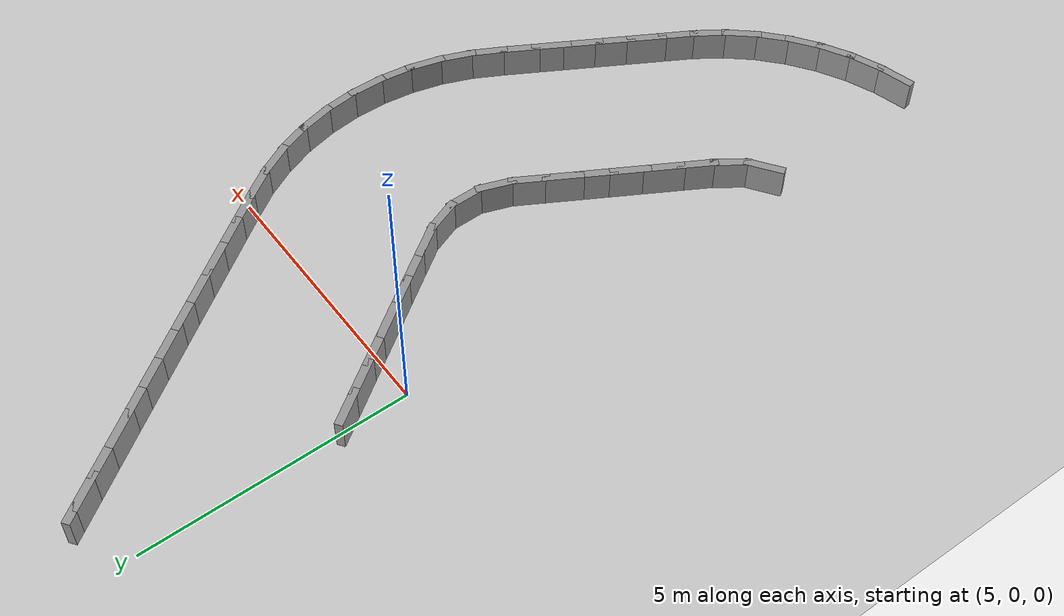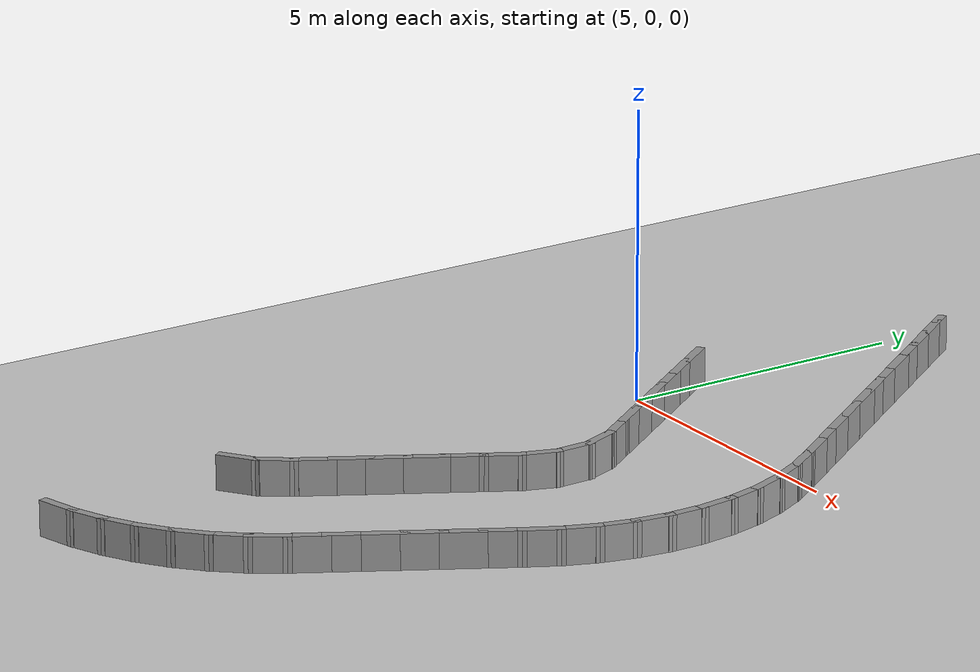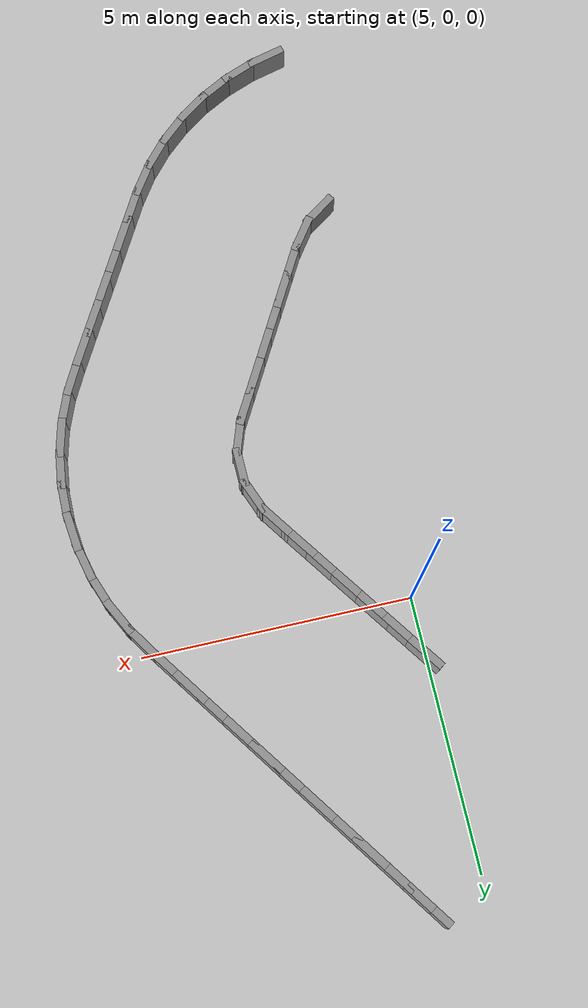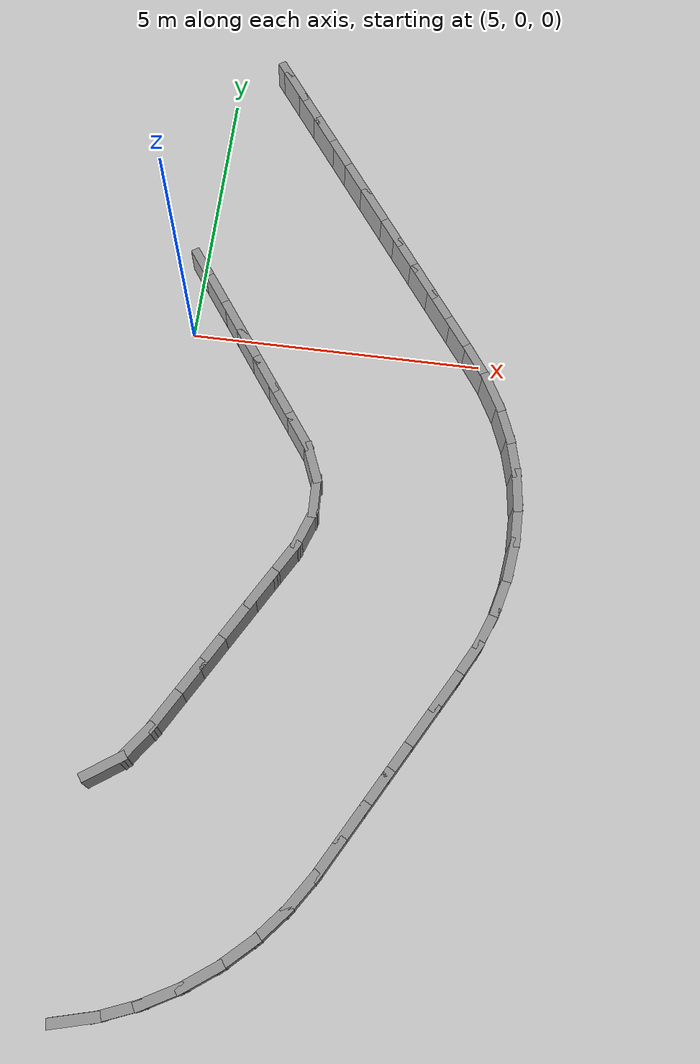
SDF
<sdf version="1.7">
 <world name="default">
  <model name="ground_plane">
   <static>1</static>
   <link name="link">
    <collision name="collision">
     <geometry><plane><normal>0 0 1</normal><size>100 100</size></plane></geometry>
     <surface><friction><ode><mu>100</mu><mu2>50</mu2></ode></friction></surface>
    </collision>
    <visual name="visual">
     <cast_shadows>0</cast_shadows>
     <geometry><plane><normal>0 0 1</normal><size>100 100</size></plane></geometry>
     <material>
      <script><uri>file://media/materials/scripts/gazebo.material</uri><name>Gazebo/Grey</name></script>
     </material>
    </visual>
   </link>
  </model>
  <model name="rand_turn_06">
   <link name="Wall_24">
    <collision name="Wall_24_Collision">
     <geometry><box><size>0.7470 0.1500 0.6000</size></box></geometry>
     <pose>0 0 0.3000 0 -0 0</pose>
    </collision>
    <visual name="Wall_24_Visual">
     <pose>0 0 0.3000 0 -0 0</pose>
     <geometry><box><size>0.7470 0.1500 0.6000</size></box></geometry>
     <material>
      <script><uri>file://media/materials/scripts/gazebo.material</uri><name>Gazebo/Grey</name></script>
      <ambient>1 1 1 1</ambient>
     </material>
    </visual>
    <pose>4.9538 -7.6061 0 0 -0 0.60958</pose>
   </link>
   <link name="Wall_25">
    <collision name="Wall_25_Collision">
     <geometry><box><size>0.7475 0.1500 0.6000</size></box></geometry>
     <pose>0 0 0.3000 0 -0 0</pose>
    </collision>
    <visual name="Wall_25_Visual">
     <pose>0 0 0.3000 0 -0 0</pose>
     <geometry><box><size>0.7475 0.1500 0.6000</size></box></geometry>
     <material>
      <script><uri>file://media/materials/scripts/gazebo.material</uri><name>Gazebo/Grey</name></script>
      <ambient>1 1 1 1</ambient>
     </material>
    </visual>
    <pose>5.3727 -7.1925 0 0 -0 0.94822</pose>
   </link>
   <link name="Wall_26">
    <collision name="Wall_26_Collision">
     <geometry><box><size>0.7500 0.1500 0.6000</size></box></geometry>
     <pose>0 0 0.3000 0 -0 0</pose>
    </collision>
    <visual name="Wall_26_Visual">
     <pose>0 0 0.3000 0 -0 0</pose>
     <geometry><box><size>0.7500 0.1500 0.6000</size></box></geometry>
     <material>
      <script><uri>file://media/materials/scripts/gazebo.material</uri><name>Gazebo/Grey</name></script>
      <ambient>1 1 1 1</ambient>
     </material>
    </visual>
    <pose>5.6947 -6.6888 0 0 -0 1.05565</pose>
   </link>
   <link name="Wall_27">
    <collision name="Wall_27_Collision">
     <geometry><box><size>0.7500 0.1500 0.6000</size></box></geometry>
     <pose>0 0 0.3000 0 -0 0</pose>
    </collision>
    <visual name="Wall_27_Visual">
     <pose>0 0 0.3000 0 -0 0</pose>
     <geometry><box><size>0.7500 0.1500 0.6000</size></box></geometry>
     <material>
      <script><uri>file://media/materials/scripts/gazebo.material</uri><name>Gazebo/Grey</name></script>
      <ambient>1 1 1 1</ambient>
     </material>
    </visual>
    <pose>5.9903 -6.1666 0 0 -0 1.05565</pose>
   </link>
   <link name="Wall_28">
    <collision name="Wall_28_Collision">
     <geometry><box><size>0.7500 0.1500 0.6000</size></box></geometry>
     <pose>0 0 0.3000 0 -0 0</pose>
    </collision>
    <visual name="Wall_28_Visual">
     <pose>0 0 0.3000 0 -0 0</pose>
     <geometry><box><size>0.7500 0.1500 0.6000</size></box></geometry>
     <material>
      <script><uri>file://media/materials/scripts/gazebo.material</uri><name>Gazebo/Grey</name></script>
      <ambient>1 1 1 1</ambient>
     </material>
    </visual>
    <pose>6.2859 -5.6445 0 0 -0 1.05565</pose>
   </link>
   <link name="Wall_29">
    <collision name="Wall_29_Collision">
     <geometry><box><size>0.7500 0.1500 0.6000</size></box></geometry>
     <pose>0 0 0.3000 0 -0 0</pose>
    </collision>
    <visual name="Wall_29_Visual">
     <pose>0 0 0.3000 0 -0 0</pose>
     <geometry><box><size>0.7500 0.1500 0.6000</size></box></geometry>
     <material>
      <script><uri>file://media/materials/scripts/gazebo.material</uri><name>Gazebo/Grey</name></script>
      <ambient>1 1 1 1</ambient>
     </material>
    </visual>
    <pose>6.5815 -5.1224 0 0 -0 1.05565</pose>
   </link>
   <link name="Wall_30">
    <collision name="Wall_30_Collision">
     <geometry><box><size>0.7500 0.1500 0.6000</size></box></geometry>
     <pose>0 0 0.3000 0 -0 0</pose>
    </collision>
    <visual name="Wall_30_Visual">
     <pose>0 0 0.3000 0 -0 0</pose>
     <geometry><box><size>0.7500 0.1500 0.6000</size></box></geometry>
     <material>
      <script><uri>file://media/materials/scripts/gazebo.material</uri><name>Gazebo/Grey</name></script>
      <ambient>1 1 1 1</ambient>
     </material>
    </visual>
    <pose>6.8771 -4.6002 0 0 -0 1.05565</pose>
   </link>
   <link name="Wall_31">
    <collision name="Wall_31_Collision">
     <geometry><box><size>0.7500 0.1500 0.6000</size></box></geometry>
     <pose>0 0 0.3000 0 -0 0</pose>
    </collision>
    <visual name="Wall_31_Visual">
     <pose>0 0 0.3000 0 -0 0</pose>
     <geometry><box><size>0.7500 0.1500 0.6000</size></box></geometry>
     <material>
      <script><uri>file://media/materials/scripts/gazebo.material</uri><name>Gazebo/Grey</name></script>
      <ambient>1 1 1 1</ambient>
     </material>
    </visual>
    <pose>7.1726 -4.0780 0 0 -0 1.05606</pose>
   </link>
   <link name="Wall_32">
    <collision name="Wall_32_Collision">
     <geometry><box><size>0.7469 0.1500 0.6000</size></box></geometry>
     <pose>0 0 0.3000 0 -0 0</pose>
    </collision>
    <visual name="Wall_32_Visual">
     <pose>0 0 0.3000 0 -0 0</pose>
     <geometry><box><size>0.7469 0.1500 0.6000</size></box></geometry>
     <material>
      <script><uri>file://media/materials/scripts/gazebo.material</uri><name>Gazebo/Grey</name></script>
      <ambient>1 1 1 1</ambient>
     </material>
    </visual>
    <pose>7.4179 -3.5349 0 0 -0 1.23779</pose>
   </link>
   <link name="Wall_33">
    <collision name="Wall_33_Collision">
     <geometry><box><size>0.7469 0.1500 0.6000</size></box></geometry>
     <pose>0 0 0.3000 0 -0 0</pose>
    </collision>
    <visual name="Wall_33_Visual">
     <pose>0 0 0.3000 0 -0 0</pose>
     <geometry><box><size>0.7469 0.1500 0.6000</size></box></geometry>
     <material>
      <script><uri>file://media/materials/scripts/gazebo.material</uri><name>Gazebo/Grey</name></script>
      <ambient>1 1 1 1</ambient>
     </material>
    </visual>
    <pose>7.5094 -2.9545 0 0 -0 1.59085</pose>
   </link>
   <link name="Wall_34">
    <collision name="Wall_34_Collision">
     <geometry><box><size>0.7469 0.1500 0.6000</size></box></geometry>
     <pose>0 0 0.3000 0 -0 0</pose>
    </collision>
    <visual name="Wall_34_Visual">
     <pose>0 0 0.3000 0 -0 0</pose>
     <geometry><box><size>0.7469 0.1500 0.6000</size></box></geometry>
     <material>
      <script><uri>file://media/materials/scripts/gazebo.material</uri><name>Gazebo/Grey</name></script>
      <ambient>1 1 1 1</ambient>
     </material>
    </visual>
    <pose>7.3949 -2.3781 0 0 -0 1.94325</pose>
   </link>
   <link name="Wall_35">
    <collision name="Wall_35_Collision">
     <geometry><box><size>0.7499 0.1500 0.6000</size></box></geometry>
     <pose>0 0 0.3000 0 -0 0</pose>
    </collision>
    <visual name="Wall_35_Visual">
     <pose>0 0 0.3000 0 -0 0</pose>
     <geometry><box><size>0.7499 0.1500 0.6000</size></box></geometry>
     <material>
      <script><uri>file://media/materials/scripts/gazebo.material</uri><name>Gazebo/Grey</name></script>
      <ambient>1 1 1 1</ambient>
     </material>
    </visual>
    <pose>7.1149 -1.8540 0 0 -0 2.17899</pose>
   </link>
   <link name="Wall_36">
    <collision name="Wall_36_Collision">
     <geometry><box><size>0.7500 0.1500 0.6000</size></box></geometry>
     <pose>0 0 0.3000 0 -0 0</pose>
    </collision>
    <visual name="Wall_36_Visual">
     <pose>0 0 0.3000 0 -0 0</pose>
     <geometry><box><size>0.7500 0.1500 0.6000</size></box></geometry>
     <material>
      <script><uri>file://media/materials/scripts/gazebo.material</uri><name>Gazebo/Grey</name></script>
      <ambient>1 1 1 1</ambient>
     </material>
    </visual>
    <pose>6.7707 -1.3626 0 0 -0 2.18462</pose>
   </link>
   <link name="Wall_37">
    <collision name="Wall_37_Collision">
     <geometry><box><size>0.7500 0.1500 0.6000</size></box></geometry>
     <pose>0 0 0.3000 0 -0 0</pose>
    </collision>
    <visual name="Wall_37_Visual">
     <pose>0 0 0.3000 0 -0 0</pose>
     <geometry><box><size>0.7500 0.1500 0.6000</size></box></geometry>
     <material>
      <script><uri>file://media/materials/scripts/gazebo.material</uri><name>Gazebo/Grey</name></script>
      <ambient>1 1 1 1</ambient>
     </material>
    </visual>
    <pose>6.4251 -0.8721 0 0 -0 2.18462</pose>
   </link>
   <link name="Wall_38">
    <collision name="Wall_38_Collision">
     <geometry><box><size>0.7500 0.1500 0.6000</size></box></geometry>
     <pose>0 0 0.3000 0 -0 0</pose>
    </collision>
    <visual name="Wall_38_Visual">
     <pose>0 0 0.3000 0 -0 0</pose>
     <geometry><box><size>0.7500 0.1500 0.6000</size></box></geometry>
     <material>
      <script><uri>file://media/materials/scripts/gazebo.material</uri><name>Gazebo/Grey</name></script>
      <ambient>1 1 1 1</ambient>
     </material>
    </visual>
    <pose>6.0795 -0.3816 0 0 -0 2.18462</pose>
   </link>
   <link name="Wall_39">
    <collision name="Wall_39_Collision">
     <geometry><box><size>0.7500 0.1500 0.6000</size></box></geometry>
     <pose>0 0 0.3000 0 -0 0</pose>
    </collision>
    <visual name="Wall_39_Visual">
     <pose>0 0 0.3000 0 -0 0</pose>
     <geometry><box><size>0.7500 0.1500 0.6000</size></box></geometry>
     <material>
      <script><uri>file://media/materials/scripts/gazebo.material</uri><name>Gazebo/Grey</name></script>
      <ambient>1 1 1 1</ambient>
     </material>
    </visual>
    <pose>5.7339 0.1089 0 0 -0 2.18462</pose>
   </link>
   <link name="Wall_40">
    <collision name="Wall_40_Collision">
     <geometry><box><size>0.7500 0.1500 0.6000</size></box></geometry>
     <pose>0 0 0.3000 0 -0 0</pose>
    </collision>
    <visual name="Wall_40_Visual">
     <pose>0 0 0.3000 0 -0 0</pose>
     <geometry><box><size>0.7500 0.1500 0.6000</size></box></geometry>
     <material>
      <script><uri>file://media/materials/scripts/gazebo.material</uri><name>Gazebo/Grey</name></script>
      <ambient>1 1 1 1</ambient>
     </material>
    </visual>
    <pose>5.3883 0.5993 0 0 -0 2.18462</pose>
   </link>
   <link name="Wall_41">
    <collision name="Wall_41_Collision">
     <geometry><box><size>0.7500 0.1500 0.6000</size></box></geometry>
     <pose>0 0 0.3000 0 -0 0</pose>
    </collision>
    <visual name="Wall_41_Visual">
     <pose>0 0 0.3000 0 -0 0</pose>
     <geometry><box><size>0.7500 0.1500 0.6000</size></box></geometry>
     <material>
      <script><uri>file://media/materials/scripts/gazebo.material</uri><name>Gazebo/Grey</name></script>
      <ambient>1 1 1 1</ambient>
     </material>
    </visual>
    <pose>5.0427 1.0898 0 0 -0 2.18462</pose>
   </link>
   <link name="Wall_69">
    <collision name="Wall_69_Collision">
     <geometry><box><size>0.7496 0.1500 0.6000</size></box></geometry>
     <pose>0 0 0.3000 0 -0 0</pose>
    </collision>
    <visual name="Wall_69_Visual">
     <pose>0 0 0.3000 0 -0 0</pose>
     <geometry><box><size>0.7496 0.1500 0.6000</size></box></geometry>
     <material>
      <script><uri>file://media/materials/scripts/gazebo.material</uri><name>Gazebo/Grey</name></script>
      <ambient>1 1 1 1</ambient>
     </material>
    </visual>
    <pose>5.2204 -11.0150 0 0 -0 0.25361</pose>
   </link>
   <link name="Wall_70">
    <collision name="Wall_70_Collision">
     <geometry><box><size>0.7496 0.1500 0.6000</size></box></geometry>
     <pose>0 0 0.3000 0 -0 0</pose>
    </collision>
    <visual name="Wall_70_Visual">
     <pose>0 0 0.3000 0 -0 0</pose>
     <geometry><box><size>0.7496 0.1500 0.6000</size></box></geometry>
     <material>
      <script><uri>file://media/materials/scripts/gazebo.material</uri><name>Gazebo/Grey</name></script>
      <ambient>1 1 1 1</ambient>
     </material>
    </visual>
    <pose>5.7898 -10.8302 0 0 -0 0.37396</pose>
   </link>
   <link name="Wall_71">
    <collision name="Wall_71_Collision">
     <geometry><box><size>0.7497 0.1500 0.6000</size></box></geometry>
     <pose>0 0 0.3000 0 -0 0</pose>
    </collision>
    <visual name="Wall_71_Visual">
     <pose>0 0 0.3000 0 -0 0</pose>
     <geometry><box><size>0.7497 0.1500 0.6000</size></box></geometry>
     <material>
      <script><uri>file://media/materials/scripts/gazebo.material</uri><name>Gazebo/Grey</name></script>
      <ambient>1 1 1 1</ambient>
     </material>
    </visual>
    <pose>6.3328 -10.5784 0 0 -0 0.49451</pose>
   </link>
   <link name="Wall_72">
    <collision name="Wall_72_Collision">
     <geometry><box><size>0.7496 0.1500 0.6000</size></box></geometry>
     <pose>0 0 0.3000 0 -0 0</pose>
    </collision>
    <visual name="Wall_72_Visual">
     <pose>0 0 0.3000 0 -0 0</pose>
     <geometry><box><size>0.7496 0.1500 0.6000</size></box></geometry>
     <material>
      <script><uri>file://media/materials/scripts/gazebo.material</uri><name>Gazebo/Grey</name></script>
      <ambient>1 1 1 1</ambient>
     </material>
    </visual>
    <pose>6.8416 -10.2631 0 0 -0 0.61501</pose>
   </link>
   <link name="Wall_73">
    <collision name="Wall_73_Collision">
     <geometry><box><size>0.7496 0.1500 0.6000</size></box></geometry>
     <pose>0 0 0.3000 0 -0 0</pose>
    </collision>
    <visual name="Wall_73_Visual">
     <pose>0 0 0.3000 0 -0 0</pose>
     <geometry><box><size>0.7496 0.1500 0.6000</size></box></geometry>
     <material>
      <script><uri>file://media/materials/scripts/gazebo.material</uri><name>Gazebo/Grey</name></script>
      <ambient>1 1 1 1</ambient>
     </material>
    </visual>
    <pose>7.3088 -9.8890 0 0 -0 0.73536</pose>
   </link>
   <link name="Wall_74">
    <collision name="Wall_74_Collision">
     <geometry><box><size>0.7496 0.1500 0.6000</size></box></geometry>
     <pose>0 0 0.3000 0 -0 0</pose>
    </collision>
    <visual name="Wall_74_Visual">
     <pose>0 0 0.3000 0 -0 0</pose>
     <geometry><box><size>0.7496 0.1500 0.6000</size></box></geometry>
     <material>
      <script><uri>file://media/materials/scripts/gazebo.material</uri><name>Gazebo/Grey</name></script>
      <ambient>1 1 1 1</ambient>
     </material>
    </visual>
    <pose>7.7277 -9.4615 0 0 -0 0.85570</pose>
   </link>
   <link name="Wall_75">
    <collision name="Wall_75_Collision">
     <geometry><box><size>0.7496 0.1500 0.6000</size></box></geometry>
     <pose>0 0 0.3000 0 -0 0</pose>
    </collision>
    <visual name="Wall_75_Visual">
     <pose>0 0 0.3000 0 -0 0</pose>
     <geometry><box><size>0.7496 0.1500 0.6000</size></box></geometry>
     <material>
      <script><uri>file://media/materials/scripts/gazebo.material</uri><name>Gazebo/Grey</name></script>
      <ambient>1 1 1 1</ambient>
     </material>
    </visual>
    <pose>8.0922 -8.9868 0 0 -0 0.97621</pose>
   </link>
   <link name="Wall_76">
    <collision name="Wall_76_Collision">
     <geometry><box><size>0.7500 0.1500 0.6000</size></box></geometry>
     <pose>0 0 0.3000 0 -0 0</pose>
    </collision>
    <visual name="Wall_76_Visual">
     <pose>0 0 0.3000 0 -0 0</pose>
     <geometry><box><size>0.7500 0.1500 0.6000</size></box></geometry>
     <material>
      <script><uri>file://media/materials/scripts/gazebo.material</uri><name>Gazebo/Grey</name></script>
      <ambient>1 1 1 1</ambient>
     </material>
    </visual>
    <pose>8.4081 -8.4774 0 0 -0 1.05518</pose>
   </link>
   <link name="Wall_77">
    <collision name="Wall_77_Collision">
     <geometry><box><size>0.7500 0.1500 0.6000</size></box></geometry>
     <pose>0 0 0.3000 0 -0 0</pose>
    </collision>
    <visual name="Wall_77_Visual">
     <pose>0 0 0.3000 0 -0 0</pose>
     <geometry><box><size>0.7500 0.1500 0.6000</size></box></geometry>
     <material>
      <script><uri>file://media/materials/scripts/gazebo.material</uri><name>Gazebo/Grey</name></script>
      <ambient>1 1 1 1</ambient>
     </material>
    </visual>
    <pose>8.7038 -7.9553 0 0 -0 1.05565</pose>
   </link>
   <link name="Wall_78">
    <collision name="Wall_78_Collision">
     <geometry><box><size>0.7500 0.1500 0.6000</size></box></geometry>
     <pose>0 0 0.3000 0 -0 0</pose>
    </collision>
    <visual name="Wall_78_Visual">
     <pose>0 0 0.3000 0 -0 0</pose>
     <geometry><box><size>0.7500 0.1500 0.6000</size></box></geometry>
     <material>
      <script><uri>file://media/materials/scripts/gazebo.material</uri><name>Gazebo/Grey</name></script>
      <ambient>1 1 1 1</ambient>
     </material>
    </visual>
    <pose>8.9994 -7.4332 0 0 -0 1.05565</pose>
   </link>
   <link name="Wall_79">
    <collision name="Wall_79_Collision">
     <geometry><box><size>0.7500 0.1500 0.6000</size></box></geometry>
     <pose>0 0 0.3000 0 -0 0</pose>
    </collision>
    <visual name="Wall_79_Visual">
     <pose>0 0 0.3000 0 -0 0</pose>
     <geometry><box><size>0.7500 0.1500 0.6000</size></box></geometry>
     <material>
      <script><uri>file://media/materials/scripts/gazebo.material</uri><name>Gazebo/Grey</name></script>
      <ambient>1 1 1 1</ambient>
     </material>
    </visual>
    <pose>9.2950 -6.9111 0 0 -0 1.05565</pose>
   </link>
   <link name="Wall_80">
    <collision name="Wall_80_Collision">
     <geometry><box><size>0.7500 0.1500 0.6000</size></box></geometry>
     <pose>0 0 0.3000 0 -0 0</pose>
    </collision>
    <visual name="Wall_80_Visual">
     <pose>0 0 0.3000 0 -0 0</pose>
     <geometry><box><size>0.7500 0.1500 0.6000</size></box></geometry>
     <material>
      <script><uri>file://media/materials/scripts/gazebo.material</uri><name>Gazebo/Grey</name></script>
      <ambient>1 1 1 1</ambient>
     </material>
    </visual>
    <pose>9.5906 -6.3890 0 0 -0 1.05565</pose>
   </link>
   <link name="Wall_81">
    <collision name="Wall_81_Collision">
     <geometry><box><size>0.7500 0.1500 0.6000</size></box></geometry>
     <pose>0 0 0.3000 0 -0 0</pose>
    </collision>
    <visual name="Wall_81_Visual">
     <pose>0 0 0.3000 0 -0 0</pose>
     <geometry><box><size>0.7500 0.1500 0.6000</size></box></geometry>
     <material>
      <script><uri>file://media/materials/scripts/gazebo.material</uri><name>Gazebo/Grey</name></script>
      <ambient>1 1 1 1</ambient>
     </material>
    </visual>
    <pose>9.8862 -5.8668 0 0 -0 1.05565</pose>
   </link>
   <link name="Wall_82">
    <collision name="Wall_82_Collision">
     <geometry><box><size>0.7498 0.1500 0.6000</size></box></geometry>
     <pose>0 0 0.3000 0 -0 0</pose>
    </collision>
    <visual name="Wall_82_Visual">
     <pose>0 0 0.3000 0 -0 0</pose>
     <geometry><box><size>0.7498 0.1500 0.6000</size></box></geometry>
     <material>
      <script><uri>file://media/materials/scripts/gazebo.material</uri><name>Gazebo/Grey</name></script>
      <ambient>1 1 1 1</ambient>
     </material>
    </visual>
    <pose>10.1748 -5.3409 0 0 -0 1.08224</pose>
   </link>
   <link name="Wall_83">
    <collision name="Wall_83_Collision">
     <geometry><box><size>0.7496 0.1500 0.6000</size></box></geometry>
     <pose>0 0 0.3000 0 -0 0</pose>
    </collision>
    <visual name="Wall_83_Visual">
     <pose>0 0 0.3000 0 -0 0</pose>
     <geometry><box><size>0.7496 0.1500 0.6000</size></box></geometry>
     <material>
      <script><uri>file://media/materials/scripts/gazebo.material</uri><name>Gazebo/Grey</name></script>
      <ambient>1 1 1 1</ambient>
     </material>
    </visual>
    <pose>10.4255 -4.7972 0 0 -0 1.19531</pose>
   </link>
   <link name="Wall_84">
    <collision name="Wall_84_Collision">
     <geometry><box><size>0.7496 0.1500 0.6000</size></box></geometry>
     <pose>0 0 0.3000 0 -0 0</pose>
    </collision>
    <visual name="Wall_84_Visual">
     <pose>0 0 0.3000 0 -0 0</pose>
     <geometry><box><size>0.7496 0.1500 0.6000</size></box></geometry>
     <material>
      <script><uri>file://media/materials/scripts/gazebo.material</uri><name>Gazebo/Grey</name></script>
      <ambient>1 1 1 1</ambient>
     </material>
    </visual>
    <pose>10.6108 -4.2282 0 0 -0 1.31666</pose>
   </link>
   <link name="Wall_85">
    <collision name="Wall_85_Collision">
     <geometry><box><size>0.7496 0.1500 0.6000</size></box></geometry>
     <pose>0 0 0.3000 0 -0 0</pose>
    </collision>
    <visual name="Wall_85_Visual">
     <pose>0 0 0.3000 0 -0 0</pose>
     <geometry><box><size>0.7496 0.1500 0.6000</size></box></geometry>
     <material>
      <script><uri>file://media/materials/scripts/gazebo.material</uri><name>Gazebo/Grey</name></script>
      <ambient>1 1 1 1</ambient>
     </material>
    </visual>
    <pose>10.7259 -3.6408 0 0 -0 1.43801</pose>
   </link>
   <link name="Wall_86">
    <collision name="Wall_86_Collision">
     <geometry><box><size>0.7496 0.1500 0.6000</size></box></geometry>
     <pose>0 0 0.3000 0 -0 0</pose>
    </collision>
    <visual name="Wall_86_Visual">
     <pose>0 0 0.3000 0 -0 0</pose>
     <geometry><box><size>0.7496 0.1500 0.6000</size></box></geometry>
     <material>
      <script><uri>file://media/materials/scripts/gazebo.material</uri><name>Gazebo/Grey</name></script>
      <ambient>1 1 1 1</ambient>
     </material>
    </visual>
    <pose>10.7690 -3.0439 0 0 -0 1.55935</pose>
   </link>
   <link name="Wall_87">
    <collision name="Wall_87_Collision">
     <geometry><box><size>0.7496 0.1500 0.6000</size></box></geometry>
     <pose>0 0 0.3000 0 -0 0</pose>
    </collision>
    <visual name="Wall_87_Visual">
     <pose>0 0 0.3000 0 -0 0</pose>
     <geometry><box><size>0.7496 0.1500 0.6000</size></box></geometry>
     <material>
      <script><uri>file://media/materials/scripts/gazebo.material</uri><name>Gazebo/Grey</name></script>
      <ambient>1 1 1 1</ambient>
     </material>
    </visual>
    <pose>10.7395 -2.4461 0 0 -0 1.68070</pose>
   </link>
   <link name="Wall_88">
    <collision name="Wall_88_Collision">
     <geometry><box><size>0.7496 0.1500 0.6000</size></box></geometry>
     <pose>0 0 0.3000 0 -0 0</pose>
    </collision>
    <visual name="Wall_88_Visual">
     <pose>0 0 0.3000 0 -0 0</pose>
     <geometry><box><size>0.7496 0.1500 0.6000</size></box></geometry>
     <material>
      <script><uri>file://media/materials/scripts/gazebo.material</uri><name>Gazebo/Grey</name></script>
      <ambient>1 1 1 1</ambient>
     </material>
    </visual>
    <pose>10.6379 -1.8563 0 0 -0 1.80205</pose>
   </link>
   <link name="Wall_89">
    <collision name="Wall_89_Collision">
     <geometry><box><size>0.7496 0.1500 0.6000</size></box></geometry>
     <pose>0 0 0.3000 0 -0 0</pose>
    </collision>
    <visual name="Wall_89_Visual">
     <pose>0 0 0.3000 0 -0 0</pose>
     <geometry><box><size>0.7496 0.1500 0.6000</size></box></geometry>
     <material>
      <script><uri>file://media/materials/scripts/gazebo.material</uri><name>Gazebo/Grey</name></script>
      <ambient>1 1 1 1</ambient>
     </material>
    </visual>
    <pose>10.4657 -1.2831 0 0 -0 1.92340</pose>
   </link>
   <link name="Wall_90">
    <collision name="Wall_90_Collision">
     <geometry><box><size>0.7496 0.1500 0.6000</size></box></geometry>
     <pose>0 0 0.3000 0 -0 0</pose>
    </collision>
    <visual name="Wall_90_Visual">
     <pose>0 0 0.3000 0 -0 0</pose>
     <geometry><box><size>0.7496 0.1500 0.6000</size></box></geometry>
     <material>
      <script><uri>file://media/materials/scripts/gazebo.material</uri><name>Gazebo/Grey</name></script>
      <ambient>1 1 1 1</ambient>
     </material>
    </visual>
    <pose>10.2253 -0.7350 0 0 -0 2.04475</pose>
   </link>
   <link name="Wall_91">
    <collision name="Wall_91_Collision">
     <geometry><box><size>0.7498 0.1500 0.6000</size></box></geometry>
     <pose>0 0 0.3000 0 -0 0</pose>
    </collision>
    <visual name="Wall_91_Visual">
     <pose>0 0 0.3000 0 -0 0</pose>
     <geometry><box><size>0.7498 0.1500 0.6000</size></box></geometry>
     <material>
      <script><uri>file://media/materials/scripts/gazebo.material</uri><name>Gazebo/Grey</name></script>
      <ambient>1 1 1 1</ambient>
     </material>
    </visual>
    <pose>9.9220 -0.2187 0 0 -0 2.15913</pose>
   </link>
   <link name="Wall_92">
    <collision name="Wall_92_Collision">
     <geometry><box><size>0.7500 0.1500 0.6000</size></box></geometry>
     <pose>0 0 0.3000 0 -0 0</pose>
    </collision>
    <visual name="Wall_92_Visual">
     <pose>0 0 0.3000 0 -0 0</pose>
     <geometry><box><size>0.7500 0.1500 0.6000</size></box></geometry>
     <material>
      <script><uri>file://media/materials/scripts/gazebo.material</uri><name>Gazebo/Grey</name></script>
      <ambient>1 1 1 1</ambient>
     </material>
    </visual>
    <pose>9.5828 0.2760 0 0 -0 2.18462</pose>
   </link>
   <link name="Wall_93">
    <collision name="Wall_93_Collision">
     <geometry><box><size>0.7500 0.1500 0.6000</size></box></geometry>
     <pose>0 0 0.3000 0 -0 0</pose>
    </collision>
    <visual name="Wall_93_Visual">
     <pose>0 0 0.3000 0 -0 0</pose>
     <geometry><box><size>0.7500 0.1500 0.6000</size></box></geometry>
     <material>
      <script><uri>file://media/materials/scripts/gazebo.material</uri><name>Gazebo/Grey</name></script>
      <ambient>1 1 1 1</ambient>
     </material>
    </visual>
    <pose>9.2372 0.7664 0 0 -0 2.18462</pose>
   </link>
   <link name="Wall_94">
    <collision name="Wall_94_Collision">
     <geometry><box><size>0.7500 0.1500 0.6000</size></box></geometry>
     <pose>0 0 0.3000 0 -0 0</pose>
    </collision>
    <visual name="Wall_94_Visual">
     <pose>0 0 0.3000 0 -0 0</pose>
     <geometry><box><size>0.7500 0.1500 0.6000</size></box></geometry>
     <material>
      <script><uri>file://media/materials/scripts/gazebo.material</uri><name>Gazebo/Grey</name></script>
      <ambient>1 1 1 1</ambient>
     </material>
    </visual>
    <pose>8.8916 1.2569 0 0 -0 2.18462</pose>
   </link>
   <link name="Wall_95">
    <collision name="Wall_95_Collision">
     <geometry><box><size>0.7500 0.1500 0.6000</size></box></geometry>
     <pose>0 0 0.3000 0 -0 0</pose>
    </collision>
    <visual name="Wall_95_Visual">
     <pose>0 0 0.3000 0 -0 0</pose>
     <geometry><box><size>0.7500 0.1500 0.6000</size></box></geometry>
     <material>
      <script><uri>file://media/materials/scripts/gazebo.material</uri><name>Gazebo/Grey</name></script>
      <ambient>1 1 1 1</ambient>
     </material>
    </visual>
    <pose>8.5460 1.7474 0 0 -0 2.18462</pose>
   </link>
   <link name="Wall_96">
    <collision name="Wall_96_Collision">
     <geometry><box><size>0.7500 0.1500 0.6000</size></box></geometry>
     <pose>0 0 0.3000 0 -0 0</pose>
    </collision>
    <visual name="Wall_96_Visual">
     <pose>0 0 0.3000 0 -0 0</pose>
     <geometry><box><size>0.7500 0.1500 0.6000</size></box></geometry>
     <material>
      <script><uri>file://media/materials/scripts/gazebo.material</uri><name>Gazebo/Grey</name></script>
      <ambient>1 1 1 1</ambient>
     </material>
    </visual>
    <pose>8.2004 2.2379 0 0 -0 2.18462</pose>
   </link>
   <link name="Wall_97">
    <collision name="Wall_97_Collision">
     <geometry><box><size>0.7500 0.1500 0.6000</size></box></geometry>
     <pose>0 0 0.3000 0 -0 0</pose>
    </collision>
    <visual name="Wall_97_Visual">
     <pose>0 0 0.3000 0 -0 0</pose>
     <geometry><box><size>0.7500 0.1500 0.6000</size></box></geometry>
     <material>
      <script><uri>file://media/materials/scripts/gazebo.material</uri><name>Gazebo/Grey</name></script>
      <ambient>1 1 1 1</ambient>
     </material>
    </visual>
    <pose>7.8548 2.7283 0 0 -0 2.18462</pose>
   </link>
   <link name="Wall_98">
    <collision name="Wall_98_Collision">
     <geometry><box><size>0.7500 0.1500 0.6000</size></box></geometry>
     <pose>0 0 0.3000 0 -0 0</pose>
    </collision>
    <visual name="Wall_98_Visual">
     <pose>0 0 0.3000 0 -0 0</pose>
     <geometry><box><size>0.7500 0.1500 0.6000</size></box></geometry>
     <material>
      <script><uri>file://media/materials/scripts/gazebo.material</uri><name>Gazebo/Grey</name></script>
      <ambient>1 1 1 1</ambient>
     </material>
    </visual>
    <pose>7.5092 3.2188 0 0 -0 2.18462</pose>
   </link>
   <link name="Wall_99">
    <collision name="Wall_99_Collision">
     <geometry><box><size>0.7500 0.1500 0.6000</size></box></geometry>
     <pose>0 0 0.3000 0 -0 0</pose>
    </collision>
    <visual name="Wall_99_Visual">
     <pose>0 0 0.3000 0 -0 0</pose>
     <geometry><box><size>0.7500 0.1500 0.6000</size></box></geometry>
     <material>
      <script><uri>file://media/materials/scripts/gazebo.material</uri><name>Gazebo/Grey</name></script>
      <ambient>1 1 1 1</ambient>
     </material>
    </visual>
    <pose>7.1636 3.7093 0 0 -0 2.18462</pose>
   </link>
   <link name="Wall_100">
    <collision name="Wall_100_Collision">
     <geometry><box><size>0.7500 0.1500 0.6000</size></box></geometry>
     <pose>0 0 0.3000 0 -0 0</pose>
    </collision>
    <visual name="Wall_100_Visual">
     <pose>0 0 0.3000 0 -0 0</pose>
     <geometry><box><size>0.7500 0.1500 0.6000</size></box></geometry>
     <material>
      <script><uri>file://media/materials/scripts/gazebo.material</uri><name>Gazebo/Grey</name></script>
      <ambient>1 1 1 1</ambient>
     </material>
    </visual>
    <pose>6.8180 4.1997 0 0 -0 2.18462</pose>
   </link>
   <link name="Wall_101">
    <collision name="Wall_101_Collision">
     <geometry><box><size>0.7500 0.1500 0.6000</size></box></geometry>
     <pose>0 0 0.3000 0 -0 0</pose>
    </collision>
    <visual name="Wall_101_Visual">
     <pose>0 0 0.3000 0 -0 0</pose>
     <geometry><box><size>0.7500 0.1500 0.6000</size></box></geometry>
     <material>
      <script><uri>file://media/materials/scripts/gazebo.material</uri><name>Gazebo/Grey</name></script>
      <ambient>1 1 1 1</ambient>
     </material>
    </visual>
    <pose>6.4724 4.6902 0 0 -0 2.18462</pose>
   </link>
   <link name="Wall_102">
    <collision name="Wall_102_Collision">
     <geometry><box><size>0.7500 0.1500 0.6000</size></box></geometry>
     <pose>0 0 0.3000 0 -0 0</pose>
    </collision>
    <visual name="Wall_102_Visual">
     <pose>0 0 0.3000 0 -0 0</pose>
     <geometry><box><size>0.7500 0.1500 0.6000</size></box></geometry>
     <material>
      <script><uri>file://media/materials/scripts/gazebo.material</uri><name>Gazebo/Grey</name></script>
      <ambient>1 1 1 1</ambient>
     </material>
    </visual>
    <pose>6.1268 5.1807 0 0 -0 2.18462</pose>
   </link>
   <link name="Wall_103">
    <collision name="Wall_103_Collision">
     <geometry><box><size>0.3895 0.1500 0.6000</size></box></geometry>
     <pose>0 0 0.3000 0 -0 0</pose>
    </collision>
    <visual name="Wall_103_Visual">
     <pose>0 0 0.3000 0 -0 0</pose>
     <geometry><box><size>0.3895 0.1500 0.6000</size></box></geometry>
     <material>
      <script><uri>file://media/materials/scripts/gazebo.material</uri><name>Gazebo/Grey</name></script>
      <ambient>1 1 1 1</ambient>
     </material>
    </visual>
    <pose>5.8851 5.5238 0 0 -0 2.18462</pose>
   </link>
   <static>1</static>
  </model>
 </world>
</sdf>
